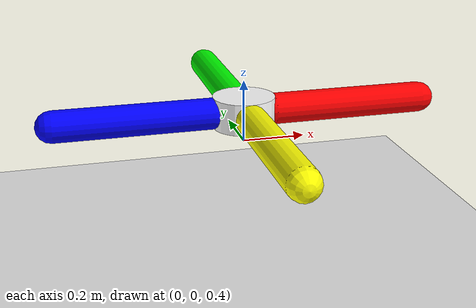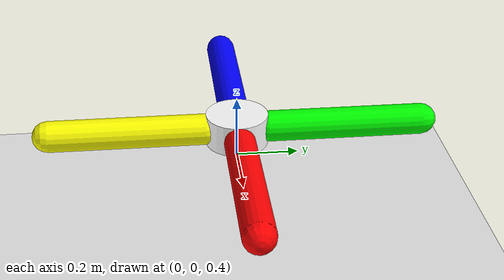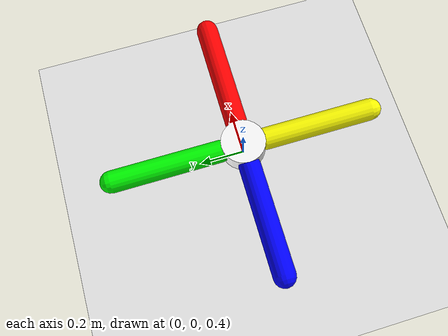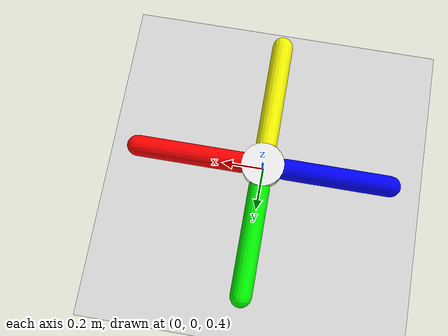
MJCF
<mujoco>
  <option gravity="0 0 -9.81"/>
  <visual>
    <headlight diffuse="0.6 0.6 0.6"  ambient="0.3 0.3 0.3" specular="0 0 0"/>
    <rgba haze="0.15 0.25 0.35 1"/>
  </visual>

  <worldbody>
    <geom type="plane" size="5 5 0.1" rgba=".9 .9 .9 1"/>

    <body pos="0 0 0.5" name="hub">
      <joint name="hub_joint" type="hinge" axis="0 0 1" damping="0.1"/>
      <geom type="cylinder" size="0.1 0.05" rgba="1 1 1 1"/>

      <body pos="0.1 0 0" euler="0 0 0">
        <joint name="hinge1" type="hinge" axis="0 0 1" damping="0.1"/>
        <geom type="capsule" size="0.05" fromto="0 0 0 0.5 0 0" rgba="1 0 0 1"/>
      </body>

      <body pos="0 0.1 0" euler="0 0 90">
        <joint name="hinge2" type="hinge" axis="0 0 1" damping="0.1"/>
        <geom type="capsule" size="0.05" fromto="0 0 0 0.5 0 0" rgba="0 1 0 1"/>
      </body>

      <body pos="-0.1 0 0" euler="0 0 180">
        <joint name="hinge3" type="hinge" axis="0 0 1" damping="0.1"/>
        <geom type="capsule" size="0.05" fromto="0 0 0 0.5 0 0" rgba="0 0 1 1"/>
      </body>

      <body pos="0 -0.1 0" euler="0 0 270">
        <joint name="hinge4" type="hinge" axis="0 0 1" damping="0.1"/>
        <geom type="capsule" size="0.05" fromto="0 0 0 0.5 0 0" rgba="1 1 0 1"/>
      </body>
    </body>
  </worldbody>

  <actuator>
    <motor joint="hinge1" ctrlrange="-1 1" gear="50"/>
    <motor joint="hinge2" ctrlrange="-1 1" gear="50"/>
    <motor joint="hinge3" ctrlrange="-1 1" gear="50"/>
    <motor joint="hinge4" ctrlrange="-1 1" gear="50"/>
  </actuator>
</mujoco>
